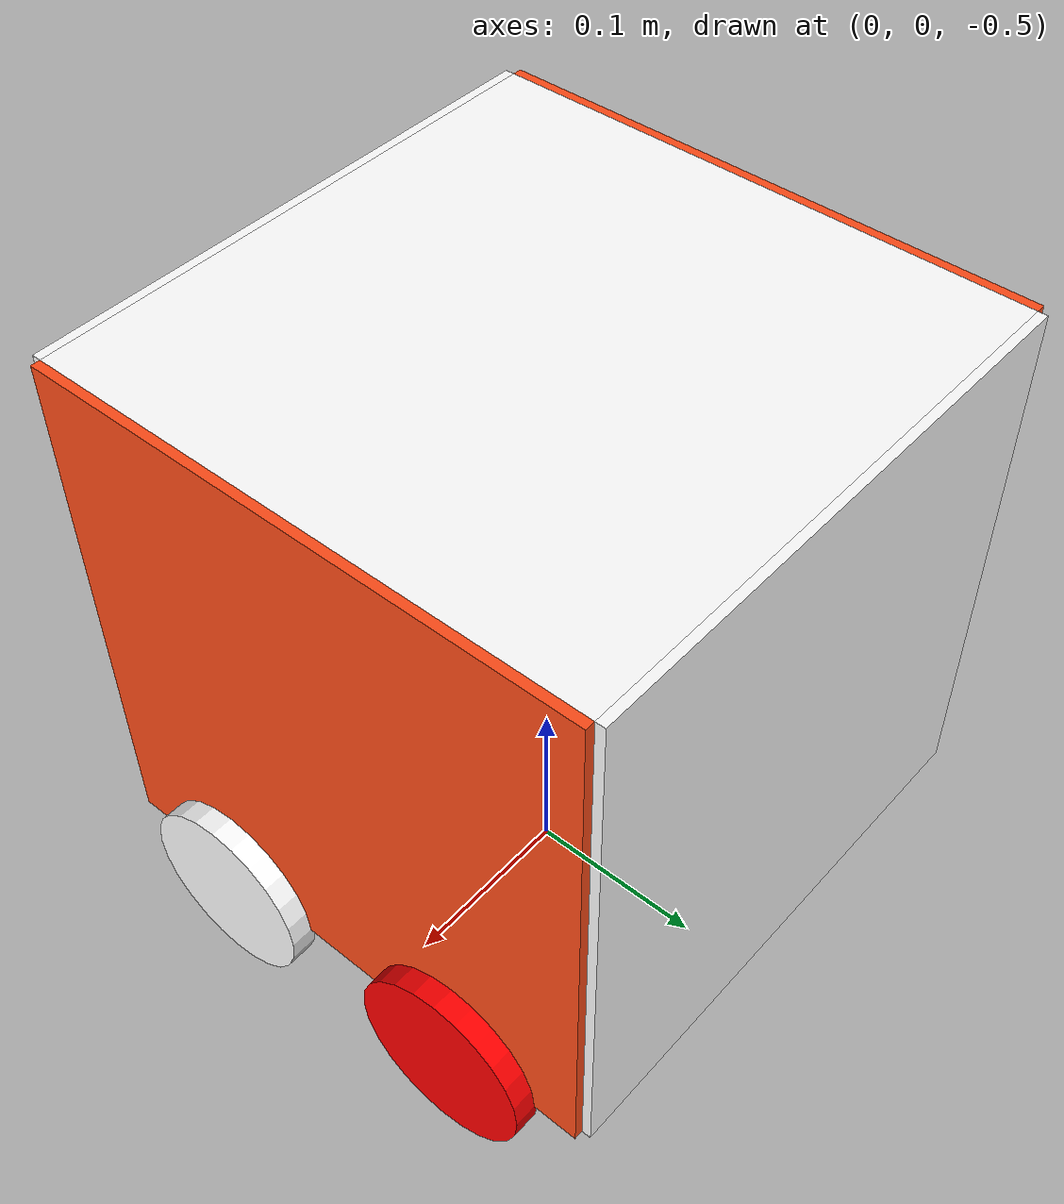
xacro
<?xml version="1.0"?>
<robot xmlns:xacro="http://www.ros.org/wiki/xacro">

    <xacro:include filename="inertial_macros.xacro"/>
    <xacro:property name="chassis_height" value="0.3"/>

    <material name="white">
        <color rgba="1 1 1 1" />
    </material>

    <material name="orange">
        <color rgba="1 0.3 0.1 1"/>
    </material>

    <material name="blue">
        <color rgba="0.2 0.2 1 1"/>
    </material>

    <material name="black">
        <color rgba="0 0 0 1"/>
    </material>

    <material name="red">
        <color rgba="1 0 0 1"/>
    </material>

    <!-- chassis-->

    <link name="base_link">
        <origin xyz="0.0 0.0 0.30"/>
    </link>

    <joint name="low_chassis_joint" type="fixed">
        <parent link="base_link"/>
        <child link="low_chassis"/>
        <origin xyz="0.0 0.0 -0.15"/>
    </joint>

    <link name="low_chassis">
        <visual>
        <origin xyz="0.0 0.0 0.0025"/>
            <geometry>
            <box size="0.3 0.3 0.005"/>
            </geometry>
            <material name="white"/>
        </visual>
        <collision>
            <origin xyz="0.0 0.0 0.0025"/>
            <geometry>
            <box size="0.3 0.3 0.005"/>
            </geometry>
        </collision>
    </link>

    <joint name="footprint_joint" type="fixed">
        <parent link="low_chassis"/>
        <child link="footprint"/>
        <origin xyz="0.0 0.0 -0.255"/>
    </joint>

    <link name="footprint">
        <origin xyz="0.0 0.0 0.0"/>
    </link>

     <!-- yMotor and ywheels (up down moving)-->

    <joint name="upper_wheel_plate_joint1" type="prismatic">
        <parent link="low_chassis"/>
        <child link="wheel_plate1"/>
        <origin xyz="-0.15 0.0 ${-chassis_height/2+0.005}"/>
        <axis xyz="0.0 0.0 1.0"/>
        <limit lower="-0.03" upper="0.03" effort="60" velocity="0.1"/>
    </joint>
    <joint name="upper_wheel_plate_joint2" type="prismatic">
        <parent link="low_chassis"/>
        <child link="wheel_plate2"/>
        <origin xyz="0.15 0.0 ${-chassis_height/2+0.005}"/>
        <axis xyz="0.0 0.0 1.0"/>
        <limit lower="-0.03" upper="0.03" effort="30" velocity="0.1"/>
    </joint>

    <link name="wheel_plate1">
        <visual>
            <origin xyz="-0.0025 0.0 0.0"/>
            <geometry>
                <box size="0.005 0.3 ${chassis_height}"/>
            </geometry>
            <material name="orange"/>
        </visual>
        <collision>
            <origin xyz="-0.0025 0.0 0.0"/>
            <geometry>
                <box size="0.005 0.3 ${chassis_height}"/>
            </geometry>
        </collision>
    </link>

    <link name="wheel_plate2">
        <visual>
            <origin xyz="0.0025 0.0 0.0"/>
            <geometry>
                <box size="0.005 0.3 ${chassis_height}"/>
            </geometry>
            <material name="orange"/>
        </visual>
        <collision>
            <origin xyz="0.0025 0.0 0.0"/>
            <geometry>
                <box size="0.005 0.3 ${chassis_height}"/>
            </geometry>
        </collision>
    </link>

    <joint name="yMotor1_joint" type="continuous">
        <parent link="wheel_plate1"/>
        <child link="yMotor1"/>
        <origin xyz="-0.005 0.075 ${-chassis_height/2}" rpy="0.0 ${pi/2} 0.0"/>
        <axis xyz="0.0 0.0 1.0"/>
    </joint>

    <joint name="yMotor2_joint" type="continuous">
        <parent link="wheel_plate2"/>
        <child link="yMotor2"/>
        <origin xyz="0.005 0.075 ${-chassis_height/2}" rpy="0.0 ${pi/2} 0.0"/>
        <axis xyz="0.0 0.0 1.0"/>
    </joint>

    <joint name="yWheel1_joint" type="fixed">
        <parent link="wheel_plate1"/>
        <child link="yWheel1"/>
        <origin xyz="-0.005 -0.075 ${-chassis_height/2}" rpy="0.0 ${pi/2} 0.0"/>
        <axis xyz="0.0 0.0 1.0"/>
    </joint>

    <joint name="yWheel2_joint" type="fixed">
        <parent link="wheel_plate2"/>
        <child link="yWheel2"/>
        <origin xyz="0.005 -0.075 ${-chassis_height/2}" rpy="0.0 ${pi/2} 0.0"/>
        <axis xyz="0.0 0.0 1.0"/>
    </joint>

    <link name="yMotor1">
        <visual>
        <origin xyz="0.0 0.0 -0.005"/>
        <geometry>
            <cylinder radius="0.05" length="0.015"/>
        </geometry>
        <material name="red"/>
        </visual>
        <collision>
            <origin xyz="0.0 0.0 -0.005"/>
        <geometry>
            <cylinder radius="0.05" length="0.015"/>
        </geometry>
        </collision>
    </link>

    <link name="yMotor2">
        <visual>
        <origin xyz="0.0 0.0 0.005"/>
        <geometry>
            <cylinder radius="0.05" length="0.015"/>
        </geometry>
        <material name="red"/>
        </visual>
        <collision>
            <origin xyz="0.0 0.0 0.005"/>
        <geometry>
            <cylinder radius="0.05" length="0.015"/>
        </geometry>
        </collision>
    </link>

    <link name="yWheel1">
        <visual>
        <origin xyz="0.0 0.0 -0.005"/>
        <geometry>
            <cylinder radius="0.05" length="0.015"/>
        </geometry>
        <material name="white"/>
        </visual>
        <collision>
            <origin xyz="0.0 0.0 -0.005"/>
        <geometry>
            <cylinder radius="0.05" length="0.015"/>
        </geometry>
        </collision>
    </link>

    <link name="yWheel2">
        <visual>
        <origin xyz="0.0 0.0 0.005"/>
        <geometry>
            <cylinder radius="0.05" length="0.015"/>
        </geometry>
        <material name="white"/>
        </visual>
        <collision>
            <origin xyz="0.0 0.0 0.005"/>
        <geometry>
            <cylinder radius="0.05" length="0.015"/>
        </geometry>
        </collision>
    </link>

    <!-- xMotor and xwheels -->

    <joint name="fixed_wheel_plate_joint1" type="fixed">
        <parent link="low_chassis"/>
        <child link="fixed_wheel_plate1"/>
        <origin xyz="0.0 -0.15 ${-chassis_height/2+0.005}"/>
        <axis xyz="0.0 0.0 1.0"/>
    </joint>
    <joint name="fixed_wheel_plate_joint2" type="fixed">
        <parent link="low_chassis"/>
        <child link="fixed_wheel_plate2"/>
        <origin xyz="0.0 0.15 ${-chassis_height/2+0.005}"/>
        <axis xyz="0.0 0.0 1.0"/>
    </joint>

    <link name="fixed_wheel_plate1">
        <visual>
            <origin xyz="0.0 -0.0025 0.0"/>
            <geometry>
                <box size="0.3 0.005 ${chassis_height}"/>
            </geometry>
            <material name="white"/>
        </visual>
        <collision>
            <origin xyz="0.0 -0.0025 0.0"/>
            <geometry>
                <box size="0.3 0.005 ${chassis_height}"/>
            </geometry>
        </collision>
    </link>

    <link name="fixed_wheel_plate2">
        <visual>
            <origin xyz="0.0 0.0025 0.0"/>
            <geometry>
                <box size="0.3 0.005 ${chassis_height}"/>
            </geometry>
            <material name="white"/>
        </visual>
        <collision>
            <origin xyz="0.0 0.0025 0.0"/>
            <geometry>
                <box size="0.3 0.005 ${chassis_height}"/>
            </geometry>
        </collision>
    </link>

</robot>
